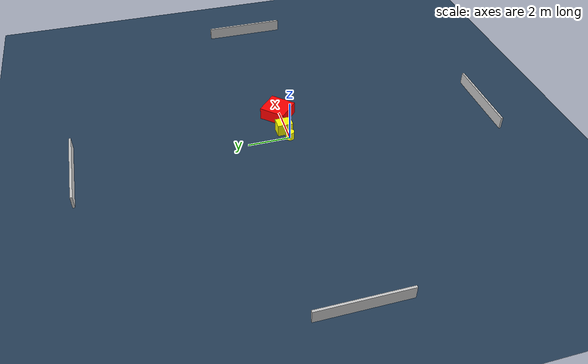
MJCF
<?xml version="1.0" ?>
<mujoco model="generated_environment">
  <option timestep="0.01" integrator="RK4" cone="elliptic"/>
  <default>
    <geom density="1"/>
  </default>
  <asset>
    <texture builtin="gradient" height="3072" name="skybox" rgb1="0.3 0.5 0.7" rgb2="0 0 0" type="skybox" width="512"/>
    <texture builtin="checker" height="300" name="groundplane" rgb1="0.2 0.3 0.4" rgb2="0.1 0.2 0.3" type="2d" width="300"/>
    <material name="groundplane" reflectance="0.2" texrepeat="5 5" texture="groundplane"/>
  </asset>
  <worldbody>
    <light dir="0 0 -1" directional="true" pos="0 0 1.5"/>
    <geom condim="3" friction="0.5 0.005 0.001" material="groundplane" name="floor" pos="0 0 0" size="0 0 0.05" type="plane"/>
    <body name="walls">
      <geom name="wall_1" condim="4" pos="-10.0 0.0 0.3" rgba="0.800000011920929 0.800000011920929 0.800000011920929 1.0" size="0.05 2.0 0.3" type="box"/>
      <geom name="wall_2" condim="4" pos="10.0 0.0 0.3" rgba="0.800000011920929 0.800000011920929 0.800000011920929 1.0" size="0.05 2.0 0.3" type="box"/>
      <geom name="wall_3" condim="4" pos="0.0 -10.0 0.3" rgba="0.800000011920929 0.800000011920929 0.800000011920929 1.0" size="2.0 0.05 0.3" type="box"/>
      <geom name="wall_4" condim="4" pos="0.0 10.0 0.3" rgba="0.800000011920929 0.800000011920929 0.800000011920929 1.0" size="2.0 0.05 0.3" type="box"/>
    </body>
    <body name="robot">
      <joint name="joint_x" type="slide" pos="0 0 0" axis="1 0 0"/>
      <joint name="joint_y" type="slide" pos="0 0 0" axis="0 1 0"/>
      <geom name="robot" type="cylinder" pos="0.0 0.0 0.2" size="0.2 0.2 0.0" mass="5.0" friction="1.0 0.005 0.0001" condim="4" rgba="1.0 1.0 0.0 1.0"/>
    </body>
    <body name="obstacle_1_movable">
      <geom name="obstacle_1_movable" condim="4" pos="0.5563331778677671 0.1447779284896275 0.3" euler="0 0 1.1585115661958367" friction="0.0 0.005 0.001" rgba="1.0 1.0 0.0 1.0" size="0.28604636653515814 0.3723516709061331 0.3" type="box" mass="0.1"/>
      <joint type="free"/>
    </body>
    <body name="obstacle_2_static">
      <geom name="obstacle_2_static" condim="4" pos="1.8536414287229592 0.11901480184881076 0.3" euler="0 0 136.57967807103955" friction="0.0 0.005 0.001" rgba="1.0 0.0 0.0 1.0" size="0.6049805195245791 0.632446107663075 0.3" type="box"/>
    </body>
  </worldbody>
  <actuator>
    <motor name="actuator_x" joint="joint_x" gear="1" ctrlrange="-1 1"/>
    <motor name="actuator_y" joint="joint_y" gear="1" ctrlrange="-1 1"/>
  </actuator>
</mujoco>
